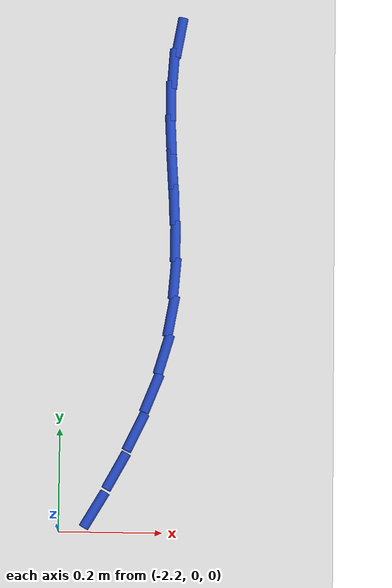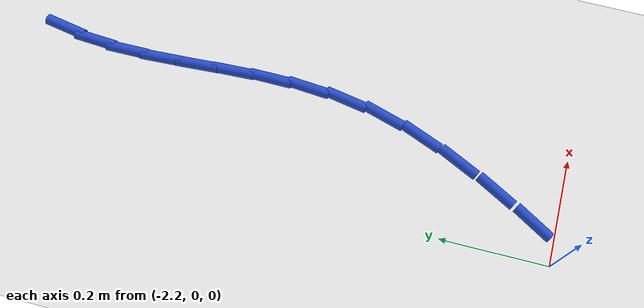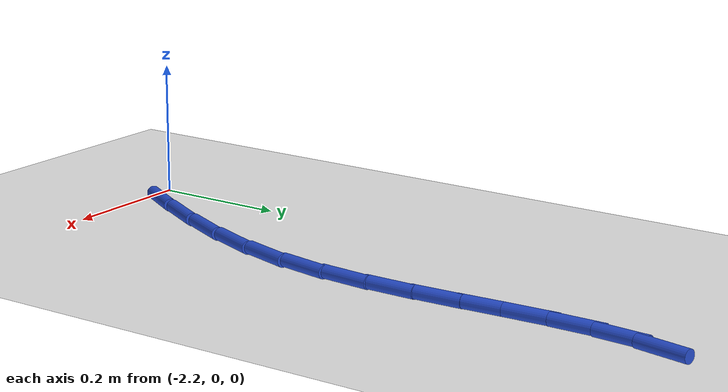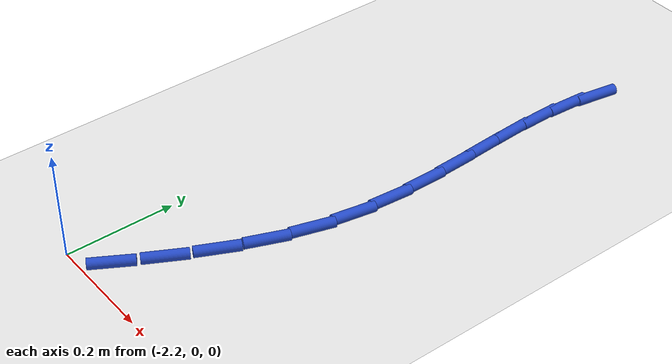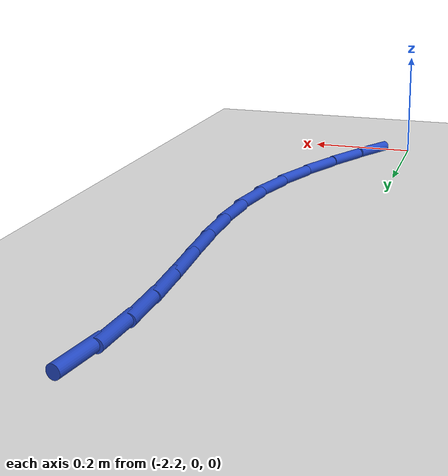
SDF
<sdf version="1.6">
 <world name="default">
  <model name="ground_plane">
   <static>1</static>
   <link name="link">
    <collision name="collision">
     <geometry><plane><normal>0 0 1</normal><size>100 100</size></plane></geometry>
     <surface><friction><ode><mu>100</mu><mu2>50</mu2></ode></friction></surface>
    </collision>
    <visual name="visual">
     <cast_shadows>0</cast_shadows>
     <geometry><plane><normal>0 0 1</normal><size>100 100</size></plane></geometry>
     <material>
      <script><uri>file://media/materials/scripts/gazebo.material</uri><name>Gazebo/WhiteGlow</name></script>
     </material>
    </visual>
   </link>
  </model>
  <model name="line">
   <link name="link_41">
    <pose>-1.976926184210588 0.9745316189583274 0.01 0 1.57 1.3932822963160125</pose>
    <collision name="collision">
     <geometry><cylinder><radius>0.01</radius><length>0.08</length></cylinder></geometry>
    </collision>
    <visual name="visual">
     <material>
      <script><name>Gazebo/Blue</name><uri>file://media/materials/scripts/gazebo.material</uri></script>
     </material>
     <geometry><cylinder><radius>0.01</radius><length>0.08</length></cylinder></geometry>
    </visual>
   </link>
   <link name="link_42">
    <pose>-1.9881523529640692 0.911956263843104 0.01 0 1.57 1.505739154280352</pose>
    <collision name="collision">
     <geometry><cylinder><radius>0.01</radius><length>0.08</length></cylinder></geometry>
    </collision>
    <visual name="visual">
     <material>
      <script><name>Gazebo/Blue</name><uri>file://media/materials/scripts/gazebo.material</uri></script>
     </material>
     <geometry><cylinder><radius>0.01</radius><length>0.08</length></cylinder></geometry>
    </visual>
   </link>
   <link name="link_43">
    <pose>-1.9923763587916845 0.8471202941146446 0.01 0 1.57 -1.5603406506285793</pose>
    <collision name="collision">
     <geometry><cylinder><radius>0.01</radius><length>0.08</length></cylinder></geometry>
    </collision>
    <visual name="visual">
     <material>
      <script><name>Gazebo/Blue</name><uri>file://media/materials/scripts/gazebo.material</uri></script>
     </material>
     <geometry><cylinder><radius>0.01</radius><length>0.08</length></cylinder></geometry>
    </visual>
   </link>
   <link name="link_44">
    <pose>-1.9916768141637409 0.7802170039827602 0.01 0 1.57 -1.5193062449268981</pose>
    <collision name="collision">
     <geometry><cylinder><radius>0.01</radius><length>0.08</length></cylinder></geometry>
    </collision>
    <visual name="visual">
     <material>
      <script><name>Gazebo/Blue</name><uri>file://media/materials/scripts/gazebo.material</uri></script>
     </material>
     <geometry><cylinder><radius>0.01</radius><length>0.08</length></cylinder></geometry>
    </visual>
   </link>
   <link name="link_45">
    <pose>-1.988132331550547 0.711439687657261 0.01 0 1.57 -1.5096898758144557</pose>
    <collision name="collision">
     <geometry><cylinder><radius>0.01</radius><length>0.08</length></cylinder></geometry>
    </collision>
    <visual name="visual">
     <material>
      <script><name>Gazebo/Blue</name><uri>file://media/materials/scripts/gazebo.material</uri></script>
     </material>
     <geometry><cylinder><radius>0.01</radius><length>0.08</length></cylinder></geometry>
    </visual>
   </link>
   <link name="link_46">
    <pose>-1.983821523422412 0.6409816393479578 0.01 0 1.57 -1.5291427503146355</pose>
    <collision name="collision">
     <geometry><cylinder><radius>0.01</radius><length>0.08</length></cylinder></geometry>
    </collision>
    <visual name="visual">
     <material>
      <script><name>Gazebo/Blue</name><uri>file://media/materials/scripts/gazebo.material</uri></script>
     </material>
     <geometry><cylinder><radius>0.01</radius><length>0.08</length></cylinder></geometry>
    </visual>
   </link>
   <link name="link_47">
    <pose>-1.9808230022496427 0.5690361532646613 0.01 0 1.57 1.5654389198719139</pose>
    <collision name="collision">
     <geometry><cylinder><radius>0.01</radius><length>0.08</length></cylinder></geometry>
    </collision>
    <visual name="visual">
     <material>
      <script><name>Gazebo/Blue</name><uri>file://media/materials/scripts/gazebo.material</uri></script>
     </material>
     <geometry><cylinder><radius>0.01</radius><length>0.08</length></cylinder></geometry>
    </visual>
   </link>
   <link name="link_48">
    <pose>-1.9812153805025485 0.4957965236171823 0.01 0 1.57 1.4921072150872503</pose>
    <collision name="collision">
     <geometry><cylinder><radius>0.01</radius><length>0.08</length></cylinder></geometry>
    </collision>
    <visual name="visual">
     <material>
      <script><name>Gazebo/Blue</name><uri>file://media/materials/scripts/gazebo.material</uri></script>
     </material>
     <geometry><cylinder><radius>0.01</radius><length>0.08</length></cylinder></geometry>
    </visual>
   </link>
   <link name="link_49">
    <pose>-1.987077270651438 0.4214560446153313 0.01 0 1.57 1.3944369491119097</pose>
    <collision name="collision">
     <geometry><cylinder><radius>0.01</radius><length>0.08</length></cylinder></geometry>
    </collision>
    <visual name="visual">
     <material>
      <script><name>Gazebo/Blue</name><uri>file://media/materials/scripts/gazebo.material</uri></script>
     </material>
     <geometry><cylinder><radius>0.01</radius><length>0.08</length></cylinder></geometry>
    </visual>
   </link>
   <link name="link_50">
    <pose>-2.0004872851666184 0.3462080104689189 0.01 0 1.57 1.2837319769802846</pose>
    <collision name="collision">
     <geometry><cylinder><radius>0.01</radius><length>0.08</length></cylinder></geometry>
    </collision>
    <visual name="visual">
     <material>
      <script><name>Gazebo/Blue</name><uri>file://media/materials/scripts/gazebo.material</uri></script>
     </material>
     <geometry><cylinder><radius>0.01</radius><length>0.08</length></cylinder></geometry>
    </visual>
   </link>
   <link name="link_51">
    <pose>-2.022899486468962 0.2702906783916199 0.01 0 1.57 1.1916603013216125</pose>
    <collision name="collision">
     <geometry><cylinder><radius>0.01</radius><length>0.08</length></cylinder></geometry>
    </collision>
    <visual name="visual">
     <material>
      <script><name>Gazebo/Blue</name><uri>file://media/materials/scripts/gazebo.material</uri></script>
     </material>
     <geometry><cylinder><radius>0.01</radius><length>0.08</length></cylinder></geometry>
    </visual>
   </link>
   <link name="link_52">
    <pose>-2.0532451785582984 0.19412392562377223 0.01 0 1.57 1.122020986550448</pose>
    <collision name="collision">
     <geometry><cylinder><radius>0.01</radius><length>0.08</length></cylinder></geometry>
    </collision>
    <visual name="visual">
     <material>
      <script><name>Gazebo/Blue</name><uri>file://media/materials/scripts/gazebo.material</uri></script>
     </material>
     <geometry><cylinder><radius>0.01</radius><length>0.08</length></cylinder></geometry>
    </visual>
   </link>
   <link name="link_53">
    <pose>-2.0898187760398312 0.1181734807515551 0.01 0 1.57 1.0710358032682314</pose>
    <collision name="collision">
     <geometry><cylinder><radius>0.01</radius><length>0.08</length></cylinder></geometry>
    </collision>
    <visual name="visual">
     <material>
      <script><name>Gazebo/Blue</name><uri>file://media/materials/scripts/gazebo.material</uri></script>
     </material>
     <geometry><cylinder><radius>0.01</radius><length>0.08</length></cylinder></geometry>
    </visual>
   </link>
   <link name="link_54">
    <pose>-2.1309146934968948 0.04290507236272181 0.01 0 1.57 1.0359480220993167</pose>
    <collision name="collision">
     <geometry><cylinder><radius>0.01</radius><length>0.08</length></cylinder></geometry>
    </collision>
    <visual name="visual">
     <material>
      <script><name>Gazebo/Blue</name><uri>file://media/materials/scripts/gazebo.material</uri></script>
     </material>
     <geometry><cylinder><radius>0.01</radius><length>0.08</length></cylinder></geometry>
    </visual>
   </link>
  </model>
 </world>
</sdf>
